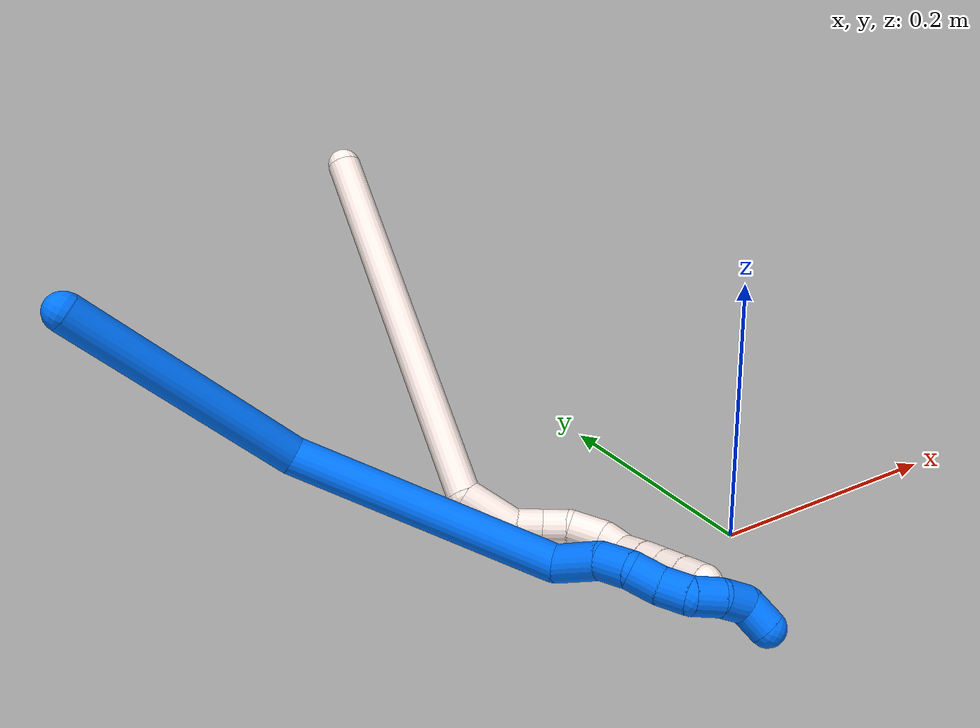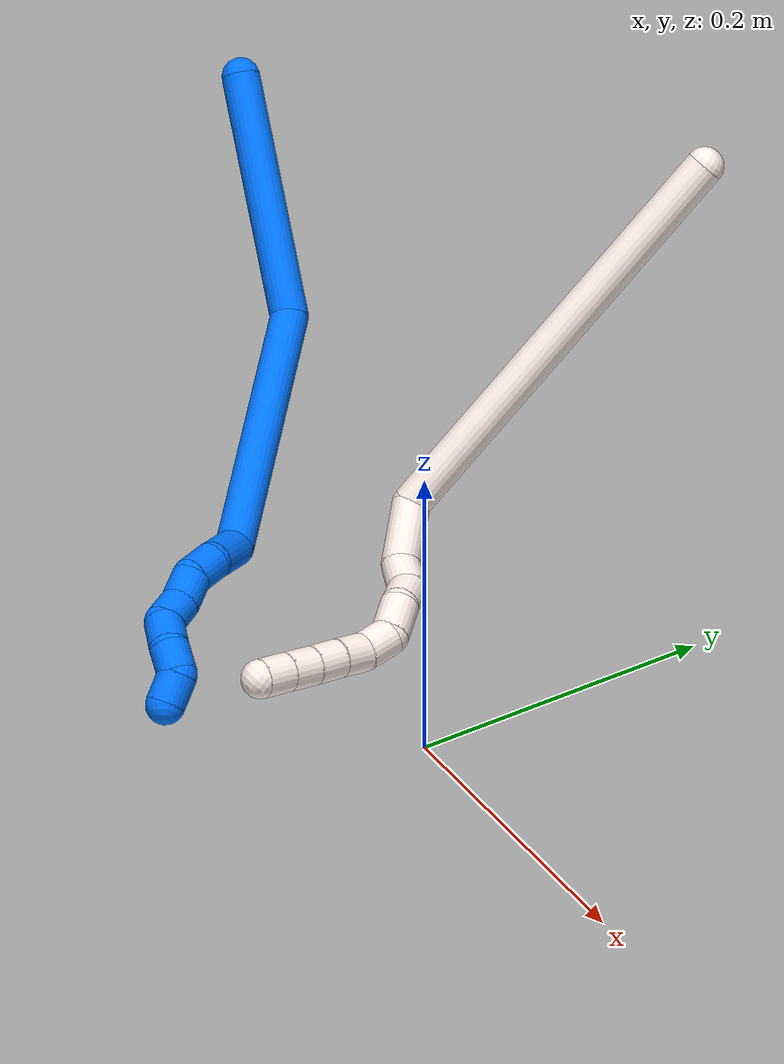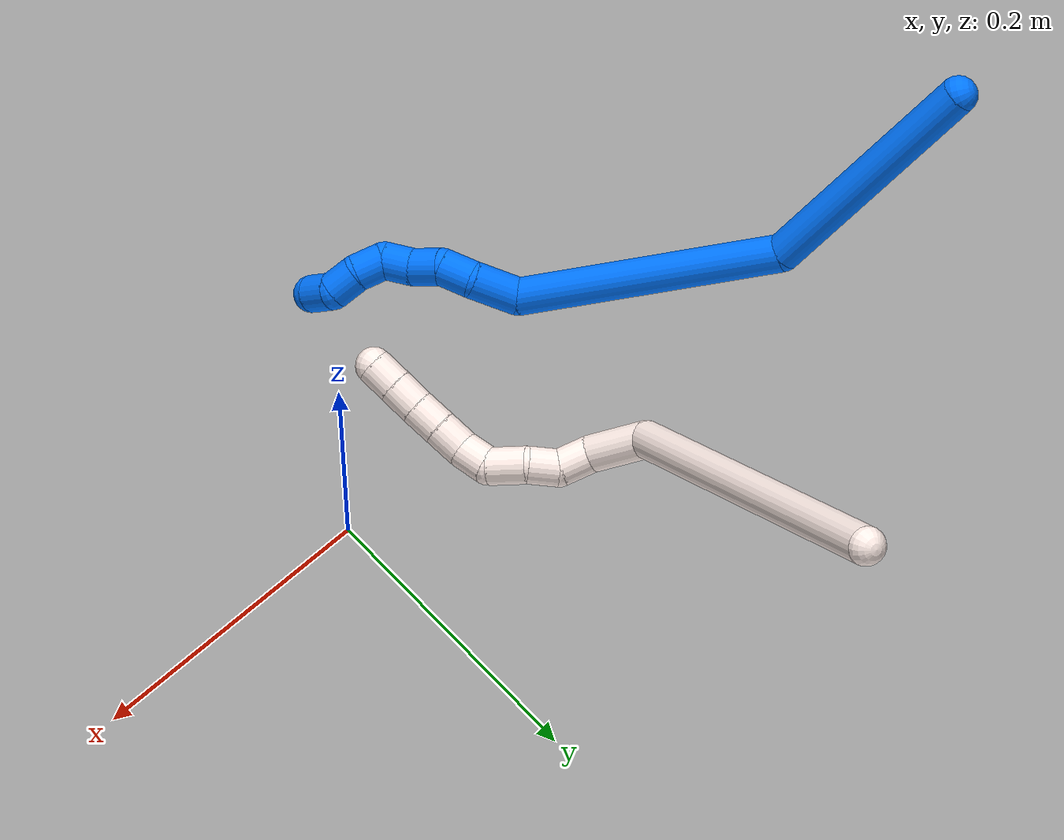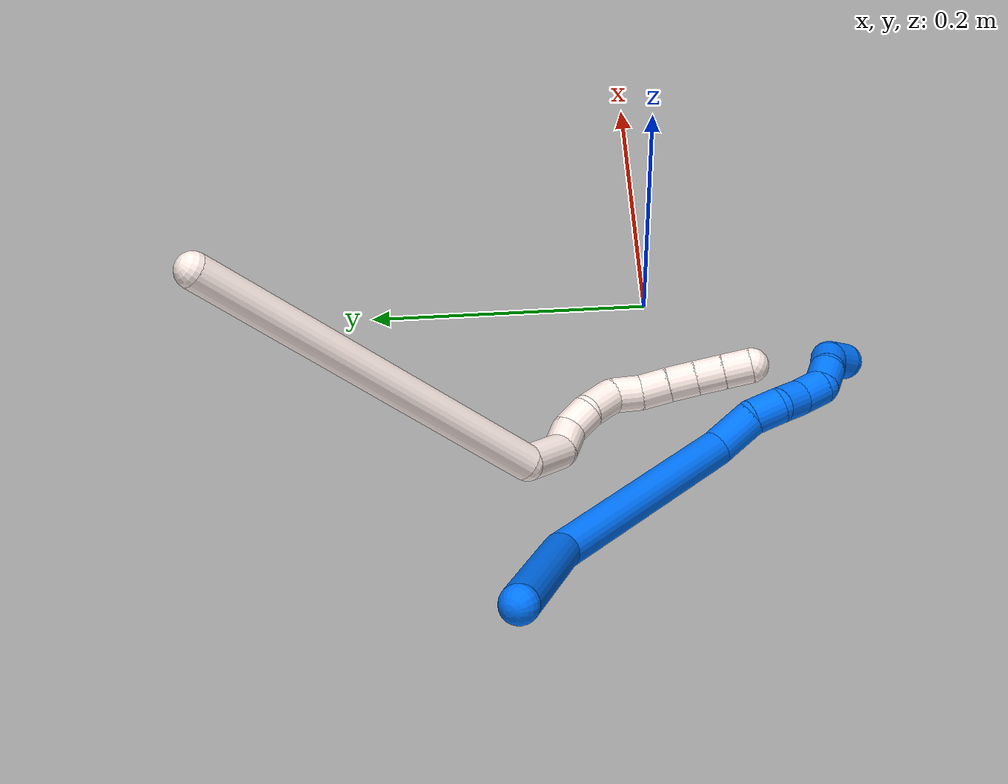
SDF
<sdf version="1.7">
 <world name="default">
  <model name="11">
   <static>0</static>
   <link name="11">
    <collision name="collision-cylinder-e_1_1_4">
     <pose>-0.003683 0.000569 -0.142934 -3.13761 -0.025764 2.83475</pose>
     <geometry><cylinder><radius>0.0125</radius><length>0.285966</length></cylinder></geometry>
     <surface>
      <friction><ode><mu>1.16</mu><mu2>1.16</mu2><slip1>0</slip1><slip2>0</slip2></ode></friction>
      <contact><ode><kp>1e+06</kp><kd>1</kd><max_vel>0</max_vel><min_depth>0.001</min_depth></ode></contact>
     </surface>
    </collision>
    <visual name="visual-cylinder-e_1_1_4">
     <pose>-0.003683 0.000569 -0.142934 -3.13761 -0.025764 2.83475</pose>
     <geometry><cylinder><radius>0.0125</radius><length>0.285966</length></cylinder></geometry>
     <material><ambient>1 0.933333 0.909804 1</ambient></material>
    </visual>
    <collision name="collision-cylinder-e_2_4_5">
     <pose>0.004998 -0.004663 -0.302017 2.79666 0.624411 2.15179</pose>
     <geometry><cylinder><radius>0.0125</radius><length>0.042299</length></cylinder></geometry>
     <surface>
      <friction><ode><mu>1.16</mu><mu2>1.16</mu2><slip1>0</slip1><slip2>0</slip2></ode></friction>
      <contact><ode><kp>1e+06</kp><kd>1</kd><max_vel>0</max_vel><min_depth>0.001</min_depth></ode></contact>
     </surface>
    </collision>
    <visual name="visual-cylinder-e_2_4_5">
     <pose>0.004998 -0.004663 -0.302017 2.79666 0.624411 2.15179</pose>
     <geometry><cylinder><radius>0.0125</radius><length>0.042299</length></cylinder></geometry>
     <material><ambient>1 0.933333 0.909804 1</ambient></material>
    </visual>
    <collision name="collision-cylinder-e_3_5_6">
     <pose>0.0265 -0.015949 -0.321877 2.16585 0.943645 1.53162</pose>
     <geometry><cylinder><radius>0.0125</radius><length>0.02257</length></cylinder></geometry>
     <surface>
      <friction><ode><mu>1.16</mu><mu2>1.16</mu2><slip1>0</slip1><slip2>0</slip2></ode></friction>
      <contact><ode><kp>1e+06</kp><kd>1</kd><max_vel>0</max_vel><min_depth>0.001</min_depth></ode></contact>
     </surface>
    </collision>
    <visual name="visual-cylinder-e_3_5_6">
     <pose>0.0265 -0.015949 -0.321877 2.16585 0.943645 1.53162</pose>
     <geometry><cylinder><radius>0.0125</radius><length>0.02257</length></cylinder></geometry>
     <material><ambient>1 0.933333 0.909804 1</ambient></material>
    </visual>
    <collision name="collision-cylinder-e_4_6_7">
     <pose>0.039896 -0.029756 -0.329895 2.04818 0.426652 0.683919</pose>
     <geometry><cylinder><radius>0.0125</radius><length>0.020586</length></cylinder></geometry>
     <surface>
      <friction><ode><mu>1.16</mu><mu2>1.16</mu2><slip1>0</slip1><slip2>0</slip2></ode></friction>
      <contact><ode><kp>1e+06</kp><kd>1</kd><max_vel>0</max_vel><min_depth>0.001</min_depth></ode></contact>
     </surface>
    </collision>
    <visual name="visual-cylinder-e_4_6_7">
     <pose>0.039896 -0.029756 -0.329895 2.04818 0.426652 0.683919</pose>
     <geometry><cylinder><radius>0.0125</radius><length>0.020586</length></cylinder></geometry>
     <material><ambient>1 0.933333 0.909804 1</ambient></material>
    </visual>
    <collision name="collision-cylinder-e_5_7_8">
     <pose>0.050744 -0.045672 -0.342653 2.4097 0.525422 1.22384</pose>
     <geometry><cylinder><radius>0.0125</radius><length>0.02627</length></cylinder></geometry>
     <surface>
      <friction><ode><mu>1.16</mu><mu2>1.16</mu2><slip1>0</slip1><slip2>0</slip2></ode></friction>
      <contact><ode><kp>1e+06</kp><kd>1</kd><max_vel>0</max_vel><min_depth>0.001</min_depth></ode></contact>
     </surface>
    </collision>
    <visual name="visual-cylinder-e_5_7_8">
     <pose>0.050744 -0.045672 -0.342653 2.4097 0.525422 1.22384</pose>
     <geometry><cylinder><radius>0.0125</radius><length>0.02627</length></cylinder></geometry>
     <material><ambient>1 0.933333 0.909804 1</ambient></material>
    </visual>
    <collision name="collision-cylinder-e_6_8_9">
     <pose>0.056411 -0.059839 -0.359427 2.473 -0.086665 -0.248389</pose>
     <geometry><cylinder><radius>0.0125</radius><length>0.021286</length></cylinder></geometry>
     <surface>
      <friction><ode><mu>1.16</mu><mu2>1.16</mu2><slip1>0</slip1><slip2>0</slip2></ode></friction>
      <contact><ode><kp>1e+06</kp><kd>1</kd><max_vel>0</max_vel><min_depth>0.001</min_depth></ode></contact>
     </surface>
    </collision>
    <visual name="visual-cylinder-e_6_8_9">
     <pose>0.056411 -0.059839 -0.359427 2.473 -0.086665 -0.248389</pose>
     <geometry><cylinder><radius>0.0125</radius><length>0.021286</length></cylinder></geometry>
     <material><ambient>1 0.933333 0.909804 1</ambient></material>
    </visual>
    <collision name="collision-cylinder-e_7_9_10">
     <pose>0.05322 -0.0748 -0.373537 2.1749 -0.219169 -0.413262</pose>
     <geometry><cylinder><radius>0.0125</radius><length>0.020884</length></cylinder></geometry>
     <surface>
      <friction><ode><mu>1.16</mu><mu2>1.16</mu2><slip1>0</slip1><slip2>0</slip2></ode></friction>
      <contact><ode><kp>1e+06</kp><kd>1</kd><max_vel>0</max_vel><min_depth>0.001</min_depth></ode></contact>
     </surface>
    </collision>
    <visual name="visual-cylinder-e_7_9_10">
     <pose>0.05322 -0.0748 -0.373537 2.1749 -0.219169 -0.413262</pose>
     <geometry><cylinder><radius>0.0125</radius><length>0.020884</length></cylinder></geometry>
     <material><ambient>1 0.933333 0.909804 1</ambient></material>
    </visual>
    <collision name="collision-cylinder-e_8_10_11">
     <pose>0.048755 -0.090989 -0.385282 2.2229 -0.219946 -0.439262</pose>
     <geometry><cylinder><radius>0.0125</radius><length>0.020112</length></cylinder></geometry>
     <surface>
      <friction><ode><mu>1.16</mu><mu2>1.16</mu2><slip1>0</slip1><slip2>0</slip2></ode></friction>
      <contact><ode><kp>1e+06</kp><kd>1</kd><max_vel>0</max_vel><min_depth>0.001</min_depth></ode></contact>
     </surface>
    </collision>
    <visual name="visual-cylinder-e_8_10_11">
     <pose>0.048755 -0.090989 -0.385282 2.2229 -0.219946 -0.439262</pose>
     <geometry><cylinder><radius>0.0125</radius><length>0.020112</length></cylinder></geometry>
     <material><ambient>1 0.933333 0.909804 1</ambient></material>
    </visual>
    <collision name="collision-cylinder-e_9_11_12">
     <pose>0.044075 -0.106544 -0.397048 2.21383 -0.251139 -0.494322</pose>
     <geometry><cylinder><radius>0.0125</radius><length>0.02001</length></cylinder></geometry>
     <surface>
      <friction><ode><mu>1.16</mu><mu2>1.16</mu2><slip1>0</slip1><slip2>0</slip2></ode></friction>
      <contact><ode><kp>1e+06</kp><kd>1</kd><max_vel>0</max_vel><min_depth>0.001</min_depth></ode></contact>
     </surface>
    </collision>
    <visual name="visual-cylinder-e_9_11_12">
     <pose>0.044075 -0.106544 -0.397048 2.21383 -0.251139 -0.494322</pose>
     <geometry><cylinder><radius>0.0125</radius><length>0.02001</length></cylinder></geometry>
     <material><ambient>1 0.933333 0.909804 1</ambient></material>
    </visual>
    <collision name="collision-cylinder-e_10_12_2">
     <pose>0.039164 -0.122037 -0.408727 2.21961 -0.244731 -0.485439</pose>
     <geometry><cylinder><radius>0.0125</radius><length>0.020016</length></cylinder></geometry>
     <surface>
      <friction><ode><mu>1.16</mu><mu2>1.16</mu2><slip1>0</slip1><slip2>0</slip2></ode></friction>
      <contact><ode><kp>1e+06</kp><kd>1</kd><max_vel>0</max_vel><min_depth>0.001</min_depth></ode></contact>
     </surface>
    </collision>
    <visual name="visual-cylinder-e_10_12_2">
     <pose>0.039164 -0.122037 -0.408727 2.21961 -0.244731 -0.485439</pose>
     <geometry><cylinder><radius>0.0125</radius><length>0.020016</length></cylinder></geometry>
     <material><ambient>1 0.933333 0.909804 1</ambient></material>
    </visual>
    <collision name="collision-sphere-2">
     <pose>0.036739 -0.129774 -0.414594 0 -0 0</pose>
     <geometry><sphere><radius>0.0125</radius></sphere></geometry>
     <surface>
      <friction><ode><mu>1.16</mu><mu2>1.16</mu2><slip1>0</slip1><slip2>0</slip2></ode></friction>
      <contact><ode><kp>1e+06</kp><kd>1</kd><max_vel>0</max_vel><min_depth>0.001</min_depth></ode></contact>
     </surface>
    </collision>
    <visual name="visual-sphere-2">
     <pose>0.036739 -0.129774 -0.414594 0 -0 0</pose>
     <geometry><sphere><radius>0.0125</radius></sphere></geometry>
     <material><ambient>1 0.933333 0.909804 1</ambient></material>
    </visual>
    <collision name="collision-sphere-12">
     <pose>0.041589 -0.1143 -0.402859 0 -0 0</pose>
     <geometry><sphere><radius>0.0125</radius></sphere></geometry>
     <surface>
      <friction><ode><mu>1.16</mu><mu2>1.16</mu2><slip1>0</slip1><slip2>0</slip2></ode></friction>
      <contact><ode><kp>1e+06</kp><kd>1</kd><max_vel>0</max_vel><min_depth>0.001</min_depth></ode></contact>
     </surface>
    </collision>
    <visual name="visual-sphere-12">
     <pose>0.041589 -0.1143 -0.402859 0 -0 0</pose>
     <geometry><sphere><radius>0.0125</radius></sphere></geometry>
     <material><ambient>1 0.933333 0.909804 1</ambient></material>
    </visual>
    <collision name="collision-sphere-11">
     <pose>0.046561 -0.098789 -0.391237 0 -0 0</pose>
     <geometry><sphere><radius>0.0125</radius></sphere></geometry>
     <surface>
      <friction><ode><mu>1.16</mu><mu2>1.16</mu2><slip1>0</slip1><slip2>0</slip2></ode></friction>
      <contact><ode><kp>1e+06</kp><kd>1</kd><max_vel>0</max_vel><min_depth>0.001</min_depth></ode></contact>
     </surface>
    </collision>
    <visual name="visual-sphere-11">
     <pose>0.046561 -0.098789 -0.391237 0 -0 0</pose>
     <geometry><sphere><radius>0.0125</radius></sphere></geometry>
     <material><ambient>1 0.933333 0.909804 1</ambient></material>
    </visual>
    <collision name="collision-sphere-10">
     <pose>0.050949 -0.083189 -0.379326 0 -0 0</pose>
     <geometry><sphere><radius>0.0125</radius></sphere></geometry>
     <surface>
      <friction><ode><mu>1.16</mu><mu2>1.16</mu2><slip1>0</slip1><slip2>0</slip2></ode></friction>
      <contact><ode><kp>1e+06</kp><kd>1</kd><max_vel>0</max_vel><min_depth>0.001</min_depth></ode></contact>
     </surface>
    </collision>
    <visual name="visual-sphere-10">
     <pose>0.050949 -0.083189 -0.379326 0 -0 0</pose>
     <geometry><sphere><radius>0.0125</radius></sphere></geometry>
     <material><ambient>1 0.933333 0.909804 1</ambient></material>
    </visual>
    <collision name="collision-sphere-9">
     <pose>0.05549 -0.066412 -0.367747 0 -0 0</pose>
     <geometry><sphere><radius>0.0125</radius></sphere></geometry>
     <surface>
      <friction><ode><mu>1.16</mu><mu2>1.16</mu2><slip1>0</slip1><slip2>0</slip2></ode></friction>
      <contact><ode><kp>1e+06</kp><kd>1</kd><max_vel>0</max_vel><min_depth>0.001</min_depth></ode></contact>
     </surface>
    </collision>
    <visual name="visual-sphere-9">
     <pose>0.05549 -0.066412 -0.367747 0 -0 0</pose>
     <geometry><sphere><radius>0.0125</radius></sphere></geometry>
     <material><ambient>1 0.933333 0.909804 1</ambient></material>
    </visual>
    <collision name="collision-sphere-4">
     <pose>-0.007367 0.001139 -0.285869 0 -0 0</pose>
     <geometry><sphere><radius>0.0125</radius></sphere></geometry>
     <surface>
      <friction><ode><mu>1.16</mu><mu2>1.16</mu2><slip1>0</slip1><slip2>0</slip2></ode></friction>
      <contact><ode><kp>1e+06</kp><kd>1</kd><max_vel>0</max_vel><min_depth>0.001</min_depth></ode></contact>
     </surface>
    </collision>
    <visual name="visual-sphere-4">
     <pose>-0.007367 0.001139 -0.285869 0 -0 0</pose>
     <geometry><sphere><radius>0.0125</radius></sphere></geometry>
     <material><ambient>1 0.933333 0.909804 1</ambient></material>
    </visual>
    <collision name="collision-sphere-1">
     <geometry><sphere><radius>0.0125</radius></sphere></geometry>
     <surface>
      <friction><ode><mu>1.16</mu><mu2>1.16</mu2><slip1>0</slip1><slip2>0</slip2></ode></friction>
      <contact><ode><kp>1e+06</kp><kd>1</kd><max_vel>0</max_vel><min_depth>0.001</min_depth></ode></contact>
     </surface>
    </collision>
    <visual name="visual-sphere-1">
     <geometry><sphere><radius>0.0125</radius></sphere></geometry>
     <material><ambient>1 0.933333 0.909804 1</ambient></material>
    </visual>
    <collision name="collision-sphere-8">
     <pose>0.057332 -0.053266 -0.351106 0 -0 0</pose>
     <geometry><sphere><radius>0.0125</radius></sphere></geometry>
     <surface>
      <friction><ode><mu>1.16</mu><mu2>1.16</mu2><slip1>0</slip1><slip2>0</slip2></ode></friction>
      <contact><ode><kp>1e+06</kp><kd>1</kd><max_vel>0</max_vel><min_depth>0.001</min_depth></ode></contact>
     </surface>
    </collision>
    <visual name="visual-sphere-8">
     <pose>0.057332 -0.053266 -0.351106 0 -0 0</pose>
     <geometry><sphere><radius>0.0125</radius></sphere></geometry>
     <material><ambient>1 0.933333 0.909804 1</ambient></material>
    </visual>
    <collision name="collision-sphere-5">
     <pose>0.017362 -0.010465 -0.318165 0 -0 0</pose>
     <geometry><sphere><radius>0.0125</radius></sphere></geometry>
     <surface>
      <friction><ode><mu>1.16</mu><mu2>1.16</mu2><slip1>0</slip1><slip2>0</slip2></ode></friction>
      <contact><ode><kp>1e+06</kp><kd>1</kd><max_vel>0</max_vel><min_depth>0.001</min_depth></ode></contact>
     </surface>
    </collision>
    <visual name="visual-sphere-5">
     <pose>0.017362 -0.010465 -0.318165 0 -0 0</pose>
     <geometry><sphere><radius>0.0125</radius></sphere></geometry>
     <material><ambient>1 0.933333 0.909804 1</ambient></material>
    </visual>
    <collision name="collision-sphere-6">
     <pose>0.035637 -0.021433 -0.325589 0 -0 0</pose>
     <geometry><sphere><radius>0.0125</radius></sphere></geometry>
     <surface>
      <friction><ode><mu>1.16</mu><mu2>1.16</mu2><slip1>0</slip1><slip2>0</slip2></ode></friction>
      <contact><ode><kp>1e+06</kp><kd>1</kd><max_vel>0</max_vel><min_depth>0.001</min_depth></ode></contact>
     </surface>
    </collision>
    <visual name="visual-sphere-6">
     <pose>0.035637 -0.021433 -0.325589 0 -0 0</pose>
     <geometry><sphere><radius>0.0125</radius></sphere></geometry>
     <material><ambient>1 0.933333 0.909804 1</ambient></material>
    </visual>
    <collision name="collision-sphere-7">
     <pose>0.044156 -0.038078 -0.3342 0 -0 0</pose>
     <geometry><sphere><radius>0.0125</radius></sphere></geometry>
     <surface>
      <friction><ode><mu>1.16</mu><mu2>1.16</mu2><slip1>0</slip1><slip2>0</slip2></ode></friction>
      <contact><ode><kp>1e+06</kp><kd>1</kd><max_vel>0</max_vel><min_depth>0.001</min_depth></ode></contact>
     </surface>
    </collision>
    <visual name="visual-sphere-7">
     <pose>0.044156 -0.038078 -0.3342 0 -0 0</pose>
     <geometry><sphere><radius>0.0125</radius></sphere></geometry>
     <material><ambient>1 0.933333 0.909804 1</ambient></material>
    </visual>
    <inertial>
     <pose>0.013738 -0.022895 -0.232068 0 -0 0</pose>
     <mass>0.5</mass>
     <inertia>
      <ixx>-0.001262</ixx>
      <ixy>0</ixy>
      <ixz>0</ixz>
      <iyy>0.002459</iyy>
      <iyz>0</iyz>
      <izz>1.5e-05</izz>
     </inertia>
    </inertial>
   </link>
   <pose>-0.155173 0.30545 0.240245 -0.756191 0.331359 0.281221</pose>
  </model>
  <model name="14">
   <static>0</static>
   <link name="14">
    <collision name="collision-cylinder-e_1_1_4">
     <pose>-0.014895 0.026829 -0.07599 -2.8022 -0.182763 0.982212</pose>
     <geometry><cylinder><radius>0.0125</radius><length>0.163904</length></cylinder></geometry>
     <surface>
      <friction><ode><mu>1.16</mu><mu2>1.16</mu2><slip1>0</slip1><slip2>0</slip2></ode></friction>
      <contact><ode><kp>1e+06</kp><kd>1</kd><max_vel>0</max_vel><min_depth>0.001</min_depth></ode></contact>
     </surface>
    </collision>
    <visual name="visual-cylinder-e_1_1_4">
     <pose>-0.014895 0.026829 -0.07599 -2.8022 -0.182763 0.982212</pose>
     <geometry><cylinder><radius>0.0125</radius><length>0.163904</length></cylinder></geometry>
     <material><ambient>0 0.462745 1 1</ambient></material>
    </visual>
    <collision name="collision-cylinder-e_2_4_5">
     <pose>-0.020343 0.041615 -0.241291 3.00757 0.104439 1.32335</pose>
     <geometry><cylinder><radius>0.0125</radius><length>0.181225</length></cylinder></geometry>
     <surface>
      <friction><ode><mu>1.16</mu><mu2>1.16</mu2><slip1>0</slip1><slip2>0</slip2></ode></friction>
      <contact><ode><kp>1e+06</kp><kd>1</kd><max_vel>0</max_vel><min_depth>0.001</min_depth></ode></contact>
     </surface>
    </collision>
    <visual name="visual-cylinder-e_2_4_5">
     <pose>-0.020343 0.041615 -0.241291 3.00757 0.104439 1.32335</pose>
     <geometry><cylinder><radius>0.0125</radius><length>0.181225</length></cylinder></geometry>
     <material><ambient>0 0.462745 1 1</ambient></material>
    </visual>
    <collision name="collision-cylinder-e_3_5_6">
     <pose>-0.001567 0.021384 -0.341065 2.47749 0.612142 1.48364</pose>
     <geometry><cylinder><radius>0.0125</radius><length>0.032471</length></cylinder></geometry>
     <surface>
      <friction><ode><mu>1.16</mu><mu2>1.16</mu2><slip1>0</slip1><slip2>0</slip2></ode></friction>
      <contact><ode><kp>1e+06</kp><kd>1</kd><max_vel>0</max_vel><min_depth>0.001</min_depth></ode></contact>
     </surface>
    </collision>
    <visual name="visual-cylinder-e_3_5_6">
     <pose>-0.001567 0.021384 -0.341065 2.47749 0.612142 1.48364</pose>
     <geometry><cylinder><radius>0.0125</radius><length>0.032471</length></cylinder></geometry>
     <material><ambient>0 0.462745 1 1</ambient></material>
    </visual>
    <collision name="collision-cylinder-e_4_6_7">
     <pose>0.01081 0.006575 -0.35962 2.45594 0.283716 0.761252</pose>
     <geometry><cylinder><radius>0.0125</radius><length>0.021779</length></cylinder></geometry>
     <surface>
      <friction><ode><mu>1.16</mu><mu2>1.16</mu2><slip1>0</slip1><slip2>0</slip2></ode></friction>
      <contact><ode><kp>1e+06</kp><kd>1</kd><max_vel>0</max_vel><min_depth>0.001</min_depth></ode></contact>
     </surface>
    </collision>
    <visual name="visual-cylinder-e_4_6_7">
     <pose>0.01081 0.006575 -0.35962 2.45594 0.283716 0.761252</pose>
     <geometry><cylinder><radius>0.0125</radius><length>0.021779</length></cylinder></geometry>
     <material><ambient>0 0.462745 1 1</ambient></material>
    </visual>
    <collision name="collision-cylinder-e_5_7_8">
     <pose>0.01428 -0.002958 -0.377591 2.85488 0.040946 0.281829</pose>
     <geometry><cylinder><radius>0.0125</radius><length>0.020617</length></cylinder></geometry>
     <surface>
      <friction><ode><mu>1.16</mu><mu2>1.16</mu2><slip1>0</slip1><slip2>0</slip2></ode></friction>
      <contact><ode><kp>1e+06</kp><kd>1</kd><max_vel>0</max_vel><min_depth>0.001</min_depth></ode></contact>
     </surface>
    </collision>
    <visual name="visual-cylinder-e_5_7_8">
     <pose>0.01428 -0.002958 -0.377591 2.85488 0.040946 0.281829</pose>
     <geometry><cylinder><radius>0.0125</radius><length>0.020617</length></cylinder></geometry>
     <material><ambient>0 0.462745 1 1</ambient></material>
    </visual>
    <collision name="collision-cylinder-e_6_8_9">
     <pose>0.017142 -0.010606 -0.395935 2.6315 0.246449 0.886945</pose>
     <geometry><cylinder><radius>0.0125</radius><length>0.020002</length></cylinder></geometry>
     <surface>
      <friction><ode><mu>1.16</mu><mu2>1.16</mu2><slip1>0</slip1><slip2>0</slip2></ode></friction>
      <contact><ode><kp>1e+06</kp><kd>1</kd><max_vel>0</max_vel><min_depth>0.001</min_depth></ode></contact>
     </surface>
    </collision>
    <visual name="visual-cylinder-e_6_8_9">
     <pose>0.017142 -0.010606 -0.395935 2.6315 0.246449 0.886945</pose>
     <geometry><cylinder><radius>0.0125</radius><length>0.020002</length></cylinder></geometry>
     <material><ambient>0 0.462745 1 1</ambient></material>
    </visual>
    <collision name="collision-cylinder-e_7_9_10">
     <pose>0.022951 -0.013567 -0.413647 -2.95196 0.343565 -2.13872</pose>
     <geometry><cylinder><radius>0.0125</radius><length>0.020002</length></cylinder></geometry>
     <surface>
      <friction><ode><mu>1.16</mu><mu2>1.16</mu2><slip1>0</slip1><slip2>0</slip2></ode></friction>
      <contact><ode><kp>1e+06</kp><kd>1</kd><max_vel>0</max_vel><min_depth>0.001</min_depth></ode></contact>
     </surface>
    </collision>
    <visual name="visual-cylinder-e_7_9_10">
     <pose>0.022951 -0.013567 -0.413647 -2.95196 0.343565 -2.13872</pose>
     <geometry><cylinder><radius>0.0125</radius><length>0.020002</length></cylinder></geometry>
     <material><ambient>0 0.462745 1 1</ambient></material>
    </visual>
    <collision name="collision-cylinder-e_8_10_11">
     <pose>0.027226 -0.008365 -0.432245 -2.79039 0.090787 -0.501258</pose>
     <geometry><cylinder><radius>0.0125</radius><length>0.02</length></cylinder></geometry>
     <surface>
      <friction><ode><mu>1.16</mu><mu2>1.16</mu2><slip1>0</slip1><slip2>0</slip2></ode></friction>
      <contact><ode><kp>1e+06</kp><kd>1</kd><max_vel>0</max_vel><min_depth>0.001</min_depth></ode></contact>
     </surface>
    </collision>
    <visual name="visual-cylinder-e_8_10_11">
     <pose>0.027226 -0.008365 -0.432245 -2.79039 0.090787 -0.501258</pose>
     <geometry><cylinder><radius>0.0125</radius><length>0.02</length></cylinder></geometry>
     <material><ambient>0 0.462745 1 1</ambient></material>
    </visual>
    <collision name="collision-cylinder-e_9_11_2">
     <pose>0.024999 -0.007182 -0.450824 2.9032 -0.318742 -1.86085</pose>
     <geometry><cylinder><radius>0.0125</radius><length>0.02</length></cylinder></geometry>
     <surface>
      <friction><ode><mu>1.16</mu><mu2>1.16</mu2><slip1>0</slip1><slip2>0</slip2></ode></friction>
      <contact><ode><kp>1e+06</kp><kd>1</kd><max_vel>0</max_vel><min_depth>0.001</min_depth></ode></contact>
     </surface>
    </collision>
    <visual name="visual-cylinder-e_9_11_2">
     <pose>0.024999 -0.007182 -0.450824 2.9032 -0.318742 -1.86085</pose>
     <geometry><cylinder><radius>0.0125</radius><length>0.02</length></cylinder></geometry>
     <material><ambient>0 0.462745 1 1</ambient></material>
    </visual>
    <collision name="collision-sphere-2">
     <pose>0.021865 -0.009424 -0.460052 0 -0 0</pose>
     <geometry><sphere><radius>0.0125</radius></sphere></geometry>
     <surface>
      <friction><ode><mu>1.16</mu><mu2>1.16</mu2><slip1>0</slip1><slip2>0</slip2></ode></friction>
      <contact><ode><kp>1e+06</kp><kd>1</kd><max_vel>0</max_vel><min_depth>0.001</min_depth></ode></contact>
     </surface>
    </collision>
    <visual name="visual-sphere-2">
     <pose>0.021865 -0.009424 -0.460052 0 -0 0</pose>
     <geometry><sphere><radius>0.0125</radius></sphere></geometry>
     <material><ambient>0 0.462745 1 1</ambient></material>
    </visual>
    <collision name="collision-sphere-11">
     <pose>0.028133 -0.004939 -0.441596 0 -0 0</pose>
     <geometry><sphere><radius>0.0125</radius></sphere></geometry>
     <surface>
      <friction><ode><mu>1.16</mu><mu2>1.16</mu2><slip1>0</slip1><slip2>0</slip2></ode></friction>
      <contact><ode><kp>1e+06</kp><kd>1</kd><max_vel>0</max_vel><min_depth>0.001</min_depth></ode></contact>
     </surface>
    </collision>
    <visual name="visual-sphere-11">
     <pose>0.028133 -0.004939 -0.441596 0 -0 0</pose>
     <geometry><sphere><radius>0.0125</radius></sphere></geometry>
     <material><ambient>0 0.462745 1 1</ambient></material>
    </visual>
    <collision name="collision-sphere-10">
     <pose>0.02632 -0.011792 -0.422894 0 -0 0</pose>
     <geometry><sphere><radius>0.0125</radius></sphere></geometry>
     <surface>
      <friction><ode><mu>1.16</mu><mu2>1.16</mu2><slip1>0</slip1><slip2>0</slip2></ode></friction>
      <contact><ode><kp>1e+06</kp><kd>1</kd><max_vel>0</max_vel><min_depth>0.001</min_depth></ode></contact>
     </surface>
    </collision>
    <visual name="visual-sphere-10">
     <pose>0.02632 -0.011792 -0.422894 0 -0 0</pose>
     <geometry><sphere><radius>0.0125</radius></sphere></geometry>
     <material><ambient>0 0.462745 1 1</ambient></material>
    </visual>
    <collision name="collision-sphere-9">
     <pose>0.019582 -0.015342 -0.404399 0 -0 0</pose>
     <geometry><sphere><radius>0.0125</radius></sphere></geometry>
     <surface>
      <friction><ode><mu>1.16</mu><mu2>1.16</mu2><slip1>0</slip1><slip2>0</slip2></ode></friction>
      <contact><ode><kp>1e+06</kp><kd>1</kd><max_vel>0</max_vel><min_depth>0.001</min_depth></ode></contact>
     </surface>
    </collision>
    <visual name="visual-sphere-9">
     <pose>0.019582 -0.015342 -0.404399 0 -0 0</pose>
     <geometry><sphere><radius>0.0125</radius></sphere></geometry>
     <material><ambient>0 0.462745 1 1</ambient></material>
    </visual>
    <collision name="collision-sphere-4">
     <pose>-0.029789 0.053657 -0.151981 0 -0 0</pose>
     <geometry><sphere><radius>0.0125</radius></sphere></geometry>
     <surface>
      <friction><ode><mu>1.16</mu><mu2>1.16</mu2><slip1>0</slip1><slip2>0</slip2></ode></friction>
      <contact><ode><kp>1e+06</kp><kd>1</kd><max_vel>0</max_vel><min_depth>0.001</min_depth></ode></contact>
     </surface>
    </collision>
    <visual name="visual-sphere-4">
     <pose>-0.029789 0.053657 -0.151981 0 -0 0</pose>
     <geometry><sphere><radius>0.0125</radius></sphere></geometry>
     <material><ambient>0 0.462745 1 1</ambient></material>
    </visual>
    <collision name="collision-sphere-1">
     <geometry><sphere><radius>0.0125</radius></sphere></geometry>
     <surface>
      <friction><ode><mu>1.16</mu><mu2>1.16</mu2><slip1>0</slip1><slip2>0</slip2></ode></friction>
      <contact><ode><kp>1e+06</kp><kd>1</kd><max_vel>0</max_vel><min_depth>0.001</min_depth></ode></contact>
     </surface>
    </collision>
    <visual name="visual-sphere-1">
     <geometry><sphere><radius>0.0125</radius></sphere></geometry>
     <material><ambient>0 0.462745 1 1</ambient></material>
    </visual>
    <collision name="collision-sphere-8">
     <pose>0.014702 -0.00587 -0.387471 0 -0 0</pose>
     <geometry><sphere><radius>0.0125</radius></sphere></geometry>
     <surface>
      <friction><ode><mu>1.16</mu><mu2>1.16</mu2><slip1>0</slip1><slip2>0</slip2></ode></friction>
      <contact><ode><kp>1e+06</kp><kd>1</kd><max_vel>0</max_vel><min_depth>0.001</min_depth></ode></contact>
     </surface>
    </collision>
    <visual name="visual-sphere-8">
     <pose>0.014702 -0.00587 -0.387471 0 -0 0</pose>
     <geometry><sphere><radius>0.0125</radius></sphere></geometry>
     <material><ambient>0 0.462745 1 1</ambient></material>
    </visual>
    <collision name="collision-sphere-5">
     <pose>-0.010897 0.029573 -0.330601 0 -0 0</pose>
     <geometry><sphere><radius>0.0125</radius></sphere></geometry>
     <surface>
      <friction><ode><mu>1.16</mu><mu2>1.16</mu2><slip1>0</slip1><slip2>0</slip2></ode></friction>
      <contact><ode><kp>1e+06</kp><kd>1</kd><max_vel>0</max_vel><min_depth>0.001</min_depth></ode></contact>
     </surface>
    </collision>
    <visual name="visual-sphere-5">
     <pose>-0.010897 0.029573 -0.330601 0 -0 0</pose>
     <geometry><sphere><radius>0.0125</radius></sphere></geometry>
     <material><ambient>0 0.462745 1 1</ambient></material>
    </visual>
    <collision name="collision-sphere-6">
     <pose>0.007762 0.013194 -0.351528 0 -0 0</pose>
     <geometry><sphere><radius>0.0125</radius></sphere></geometry>
     <surface>
      <friction><ode><mu>1.16</mu><mu2>1.16</mu2><slip1>0</slip1><slip2>0</slip2></ode></friction>
      <contact><ode><kp>1e+06</kp><kd>1</kd><max_vel>0</max_vel><min_depth>0.001</min_depth></ode></contact>
     </surface>
    </collision>
    <visual name="visual-sphere-6">
     <pose>0.007762 0.013194 -0.351528 0 -0 0</pose>
     <geometry><sphere><radius>0.0125</radius></sphere></geometry>
     <material><ambient>0 0.462745 1 1</ambient></material>
    </visual>
    <collision name="collision-sphere-7">
     <pose>0.013858 -4.5e-05 -0.367712 0 -0 0</pose>
     <geometry><sphere><radius>0.0125</radius></sphere></geometry>
     <surface>
      <friction><ode><mu>1.16</mu><mu2>1.16</mu2><slip1>0</slip1><slip2>0</slip2></ode></friction>
      <contact><ode><kp>1e+06</kp><kd>1</kd><max_vel>0</max_vel><min_depth>0.001</min_depth></ode></contact>
     </surface>
    </collision>
    <visual name="visual-sphere-7">
     <pose>0.013858 -4.5e-05 -0.367712 0 -0 0</pose>
     <geometry><sphere><radius>0.0125</radius></sphere></geometry>
     <material><ambient>0 0.462745 1 1</ambient></material>
    </visual>
    <inertial>
     <pose>-0.007605 0.023842 -0.233459 0 -0 0</pose>
     <mass>0.5</mass>
     <inertia>
      <ixx>0.001125</ixx>
      <ixy>0</ixy>
      <ixz>0</ixz>
      <iyy>0.000499</iyy>
      <iyz>0</iyz>
      <izz>-7.6e-05</izz>
     </inertia>
    </inertial>
   </link>
   <pose>-0.415927 0.116534 0.23389 -0.488375 -0.987682 -0.076783</pose>
  </model>
 </world>
</sdf>
